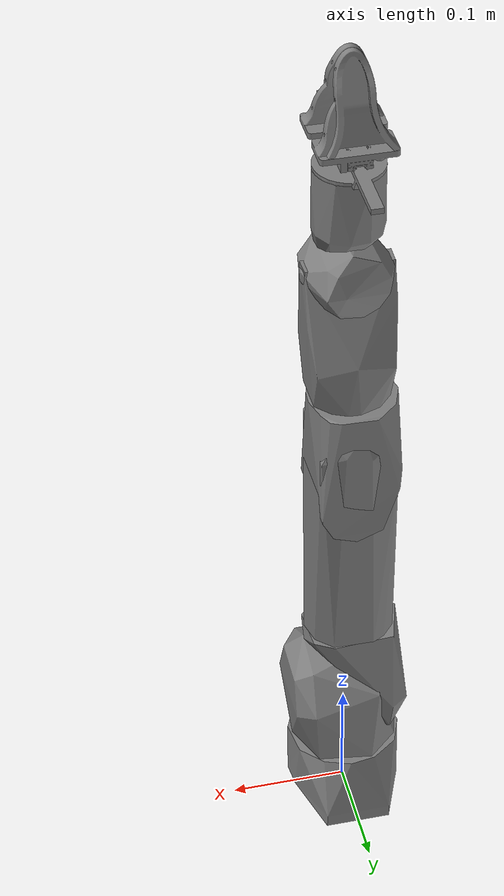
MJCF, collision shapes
<mujoco model="openarm">
  <compiler angle="radian" meshdir="meshes/"/>

  <asset>
    <mesh name="link0" content_type="model/stl" file="arm/v10/visual/link0.stl" scale="0.001 -0.001 0.001"/>
    <mesh name="link0_symp" content_type="model/stl" file="arm/v10/collision/link0_symp.stl" scale="0.001 -0.001 0.001"/>
    <mesh name="link1" content_type="model/stl" file="arm/v10/visual/link1.stl" scale="0.001 -0.001 0.001"/>
    <mesh name="link1_symp" content_type="model/stl" file="arm/v10/collision/link1_symp.stl" scale="0.001 -0.001 0.001"/>
    <mesh name="link2" content_type="model/stl" file="arm/v10/visual/link2.stl" scale="0.001 -0.001 0.001"/>
    <mesh name="link2_symp" content_type="model/stl" file="arm/v10/collision/link2_symp.stl" scale="0.001 -0.001 0.001"/>
    <mesh name="link3" content_type="model/stl" file="arm/v10/visual/link3.stl" scale="0.001 -0.001 0.001"/>
    <mesh name="link3_symp" content_type="model/stl" file="arm/v10/collision/link3_symp.stl" scale="0.001 -0.001 0.001"/>
    <mesh name="link4" content_type="model/stl" file="arm/v10/visual/link4.stl" scale="0.001 0.001 0.001"/>
    <mesh name="link4_symp" content_type="model/stl" file="arm/v10/collision/link4_symp.stl" scale="0.001 0.001 0.001"/>
    <mesh name="link5" content_type="model/stl" file="arm/v10/visual/link5.stl" scale="0.001 -0.001 0.001"/>
    <mesh name="link5_symp" content_type="model/stl" file="arm/v10/collision/link5_symp.stl" scale="0.001 -0.001 0.001"/>
    <mesh name="link6" content_type="model/stl" file="arm/v10/visual/link6.stl" scale="0.001 -0.001 0.001"/>
    <mesh name="link6_symp" content_type="model/stl" file="arm/v10/collision/link6_symp.stl" scale="0.001 -0.001 0.001"/>
    <mesh name="link7" content_type="model/stl" file="arm/v10/visual/link7.stl" scale="0.001 -0.001 0.001"/>
    <mesh name="link7_symp" content_type="model/stl" file="arm/v10/collision/link7_symp.stl" scale="0.001 -0.001 0.001"/>
    <mesh name="hand" content_type="model/stl" file="ee/openarm_hand/collision/hand.stl" scale="0.001 0.001 0.001"/>
    <mesh name="finger" content_type="model/stl" file="ee/openarm_hand/collision/finger.stl" scale="0.001 0.001 0.001"/>
    <mesh name="finger1" content_type="model/stl" file="ee/openarm_hand/collision/finger.stl" scale="0.001 -0.001 0.001"/>
  </asset>

  <worldbody>
    <geom name="openarm_link0_visual" type="mesh" contype="0" conaffinity="0" group="1" density="0" mesh="link0"/>
    <geom name="openarm_link0_collision" type="mesh" mesh="link0_symp"/>
    <body name="openarm_link1" pos="0 0 0.0625">
      <inertial pos="0.00114677 -3.31999e-05 0.0539528" quat="0.999653 0.00178277 0.0262159 -0.0018256" mass="1.14167" diaginertia="0.00156853 0.001273 0.00101447"/>
      <joint name="openarm_joint1" pos="0 0 0" axis="0 0 1" range="-1.39626 3.49066" actuatorfrcrange="-40 40"/>
      <geom name="openarm_link1_visual" pos="0 0 -0.0625" quat="1 0 0 0" type="mesh" contype="0" conaffinity="0" group="1" density="0" mesh="link1"/>
      <geom name="openarm_link1_collision" pos="0 0 -0.0625" type="mesh" mesh="link1_symp"/>
      <body name="openarm_link2" pos="-0.0301 0 0.06">
        <inertial pos="0.00839629 2.01451e-08 0.0325665" quat="0.966167 0.00423301 0.257864 0.00305037" mass="0.277509" diaginertia="0.000421651 0.000376006 0.000169343"/>
        <joint name="openarm_joint2" pos="0 0 0" axis="-1 0 0" range="-1.74533 1.74533" actuatorfrcrange="-40 40"/>
        <geom name="openarm_link2_visual" pos="0.0301 0 -0.1225" type="mesh" contype="0" conaffinity="0" group="1" density="0" mesh="link2"/>
        <geom name="openarm_link2_collision" pos="0.0301 0 -0.1225" type="mesh" mesh="link2_symp"/>
        <body name="openarm_link3" pos="0.0301 0 0.06625">
          <inertial pos="-0.00210475 -0.000554909 0.0884747" quat="0.999951 -0.00493243 -0.00144148 0.00846755" mass="1.07386" diaginertia="0.00437205 0.00431934 0.000660613"/>
          <joint name="openarm_joint3" pos="0 0 0" axis="0 0 1" range="-1.5708 1.5708" actuatorfrcrange="-27 27"/>
          <geom name="openarm_link3_visual" pos="0 0 -0.18875" quat="1 0 0 0" type="mesh" contype="0" conaffinity="0" group="1" density="0" mesh="link3"/>
          <geom name="openarm_link3_collision" pos="0 0 -0.18875" quat="1 0 0 0" type="mesh" mesh="link3_symp"/>
          <body name="openarm_link4" pos="0 0.0315 0.15375">
            <inertial pos="-0.00290068 -0.0303058 0.0633964" quat="0.994282 0.0996876 0.0329726 -0.0194356" mass="0.559853" diaginertia="0.000624355 0.000518596 0.000325049"/>
            <joint name="openarm_joint4" pos="0 0 0" axis="0 1 0" range="0 2.44346" actuatorfrcrange="-27 27"/>
            <geom name="openarm_link4_visual" pos="0 -0.0315 -0.3425" quat="1 0 0 0" type="mesh" contype="0" conaffinity="0" group="1" density="0" mesh="link4"/>
            <geom name="openarm_link4_collision" pos="0 -0.0315 -0.3425" type="mesh" mesh="link4_symp"/>
            <body name="openarm_link5" pos="0 -0.0315 0.0955">
              <inertial pos="-0.00304967 -0.00088669 0.0430798" quat="0.583368 -0.0362076 0.0020034 0.811398" mass="0.550659" diaginertia="0.000448064 0.000420549 0.000323387"/>
              <joint name="openarm_joint5" pos="0 0 0" axis="0 0 1" range="-1.5708 1.5708" actuatorfrcrange="-7 7"/>
              <geom name="openarm_link5_visual" pos="0 0 -0.438" quat="1 0 0 0" type="mesh" contype="0" conaffinity="0" group="1" density="0" mesh="link5"/>
              <geom name="openarm_link5_collision" pos="0 0 -0.438" quat="1 0 0 0" type="mesh" mesh="link5_symp"/>
              <body name="openarm_link6" pos="0.0375 0 0.1205">
                <inertial pos="-0.0371366 -0.000332305 -9.49837e-05" quat="0.162305 0.716462 0.124543 0.666955" mass="0.385203" diaginertia="0.000159518 0.000156606 0.000142875"/>
                <joint name="openarm_joint6" pos="0 0 0" axis="1 0 0" range="-0.785398 0.785398" actuatorfrcrange="-7 7"/>
                <geom name="openarm_link6_visual" pos="-0.0375 0 -0.5585" quat="1 0 0 0" type="mesh" contype="0" conaffinity="0" group="1" density="0" mesh="link6"/>
                <geom name="openarm_link6_collision" pos="-0.0375 0 -0.5585" quat="1 0 0 0" type="mesh" mesh="link6_symp"/>
                <body name="openarm_link7" pos="-0.0375 0 0">
                  <inertial pos="0.0437826 -0.00651197 0.044837" quat="0.236454 0.684604 0.544348 0.423193" mass="0.685977" diaginertia="0.00303523 0.00281069 0.000667212"/>
                  <joint name="openarm_joint7" pos="0 0 0" axis="0 -1 0" range="-1.5708 1.5708" actuatorfrcrange="-7 7"/>
                  <geom name="openarm_link7_visual" pos="0 0 -0.5585" quat="1 0 0 0" type="mesh" contype="0" conaffinity="0" group="1" density="0" mesh="link7"/>
                  <geom name="openarm_link7_collision" pos="0 0 -0.5585" type="mesh" mesh="link7_symp"/>
                  <geom name="openarm_hand_visual" pos="1e-06 0.0005 -0.5584" quat="1 0 0 0" type="mesh" contype="0" conaffinity="0" group="1" density="0" mesh="hand"/>
                  <geom name="openarm_hand_collision" pos="1e-06 0.0005 -0.5584" quat="1 0 0 0" type="mesh" mesh="hand"/>
                  <body name="openarm_right_finger" pos="1e-06 -0.0045 0.1151">
                    <inertial pos="0.0064528 -0.01702 0.0219685" quat="0.904408 0.0781531 -0.188678 0.374618" mass="0.0360255" diaginertia="1.83333e-06 1.83333e-06 1.83333e-06"/>
                    <joint name="openarm_finger_joint1" pos="0 0 0" axis="0 -1 0" type="slide" range="0 0.044" actuatorfrcrange="-333 333"/>
                    <geom name="openarm_right_finger_visual" pos="0 0.05 -0.673001" quat="1 0 0 0" type="mesh" contype="0" conaffinity="0" group="1" density="0" mesh="finger1"/>
                    <geom name="openarm_right_finger_collision" pos="0 0.05 -0.673001" quat="1 0 0 0" type="mesh" mesh="finger1"/>
                  </body>
                  <body name="openarm_left_finger" pos="1e-06 0.0075 0.1151">
                    <inertial pos="0.0064528 0.01702 0.0219685" quat="0.904408 0.0781531 -0.188678 0.374618" mass="0.0360255" diaginertia="1.83333e-06 1.83333e-06 1.83333e-06"/>
                    <joint name="openarm_finger_joint2" pos="0 0 0" axis="0 1 0" type="slide" range="0 0.044" actuatorfrcrange="-333 333"/>
                    <geom name="openarm_left_finger_visual" pos="0 -0.05 -0.673001" quat="1 0 0 0" type="mesh" contype="0" conaffinity="0" group="1" density="0" mesh="finger"/>
                    <geom name="openarm_left_finger_collision" pos="0 -0.05 -0.673001" quat="1 0 0 0" type="mesh" mesh="finger"/>
                  </body>
                </body>
              </body>
            </body>
          </body>
        </body>
      </body>
    </body>
  </worldbody>
</mujoco>
